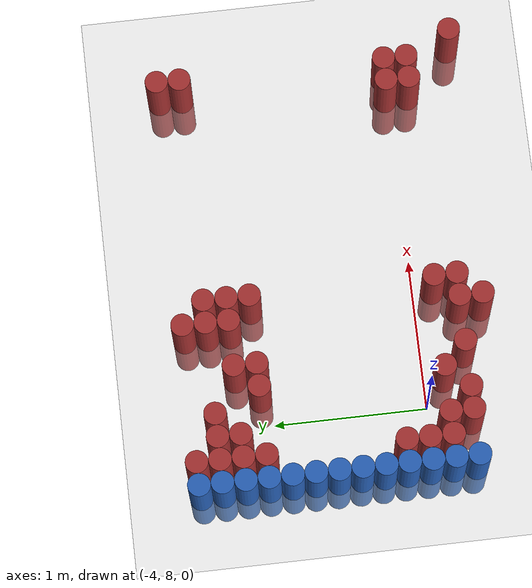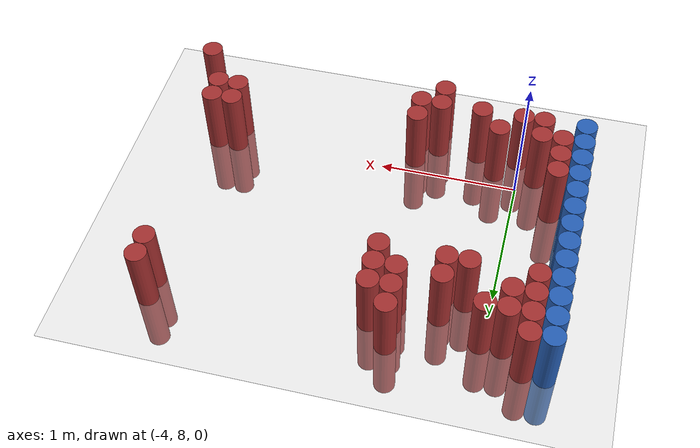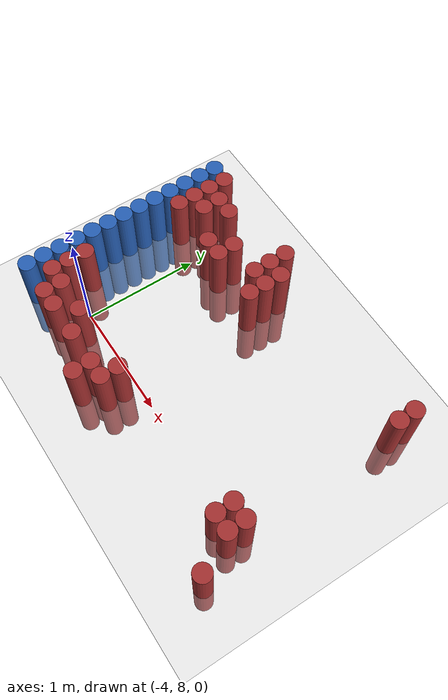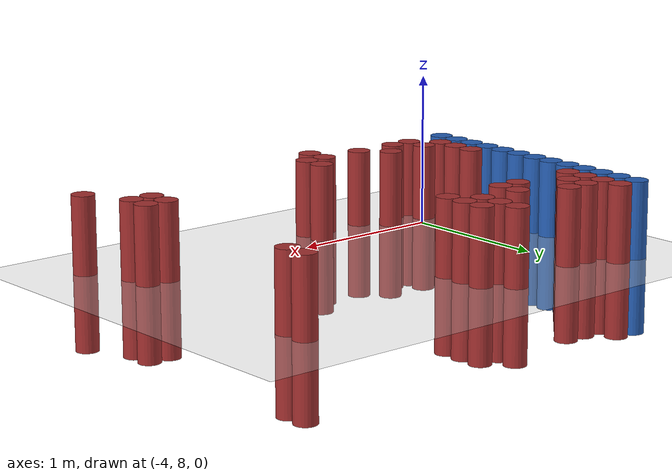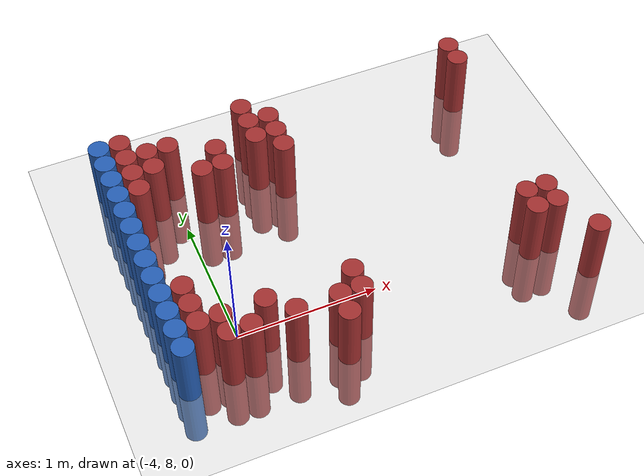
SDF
<sdf version="1.6">
 <world name="default">
  <model name="ground_plane">
   <static>1</static>
   <link name="link">
    <collision name="collision">
     <geometry><plane><normal>0 0 1</normal><size>100 100</size></plane></geometry>
     <surface><friction><ode><mu>100</mu><mu2>50</mu2></ode></friction></surface>
    </collision>
    <visual name="visual">
     <cast_shadows>0</cast_shadows>
     <geometry><plane><normal>0 0 1</normal><size>100 100</size></plane></geometry>
     <material>
      <script><uri>file://media/materials/scripts/gazebo.material</uri><name>Gazebo/Grey</name></script>
     </material>
    </visual>
   </link>
  </model>
  <model name="unit_cylinder_113">
   <static>1</static>
   <pose>-4.425000 7.725000 0.000000 0.000000 0.000000 0.000000</pose>
   <link name="link">
    <inertial>
     <mass>1</mass>
     <inertia><ixx>0.145833</ixx><ixy>0</ixy><ixz>0</ixz><iyy>0.145833</iyy><iyz>0</iyz><izz>0.125</izz></inertia>
    </inertial>
    <collision name="collision">
     <geometry><cylinder><radius>0.075000</radius><length>1</length></cylinder></geometry>
    </collision>
    <visual name="visual">
     <geometry><cylinder><radius>0.075000</radius><length>1</length></cylinder></geometry>
     <material>
      <ambient>0.152000 0.379000 0.720000 1</ambient>
      <diffuse>0.152000 0.379000 0.720000 1</diffuse>
     </material>
     <material>
      <script><name>Gazebo/Grey</name><uri>file://media/materials/scripts/gazebo.material</uri></script>
     </material>
    </visual>
   </link>
  </model>
  <model name="unit_cylinder_114">
   <static>1</static>
   <pose>-4.425000 7.875000 0.000000 0.000000 0.000000 0.000000</pose>
   <link name="link">
    <inertial>
     <mass>1</mass>
     <inertia><ixx>0.145833</ixx><ixy>0</ixy><ixz>0</ixz><iyy>0.145833</iyy><iyz>0</iyz><izz>0.125</izz></inertia>
    </inertial>
    <collision name="collision">
     <geometry><cylinder><radius>0.075000</radius><length>1</length></cylinder></geometry>
    </collision>
    <visual name="visual">
     <geometry><cylinder><radius>0.075000</radius><length>1</length></cylinder></geometry>
     <material>
      <ambient>0.152000 0.379000 0.720000 1</ambient>
      <diffuse>0.152000 0.379000 0.720000 1</diffuse>
     </material>
     <material>
      <script><name>Gazebo/Grey</name><uri>file://media/materials/scripts/gazebo.material</uri></script>
     </material>
    </visual>
   </link>
  </model>
  <model name="unit_cylinder_115">
   <static>1</static>
   <pose>-4.425000 8.025000 0.000000 0.000000 0.000000 0.000000</pose>
   <link name="link">
    <inertial>
     <mass>1</mass>
     <inertia><ixx>0.145833</ixx><ixy>0</ixy><ixz>0</ixz><iyy>0.145833</iyy><iyz>0</iyz><izz>0.125</izz></inertia>
    </inertial>
    <collision name="collision">
     <geometry><cylinder><radius>0.075000</radius><length>1</length></cylinder></geometry>
    </collision>
    <visual name="visual">
     <geometry><cylinder><radius>0.075000</radius><length>1</length></cylinder></geometry>
     <material>
      <ambient>0.152000 0.379000 0.720000 1</ambient>
      <diffuse>0.152000 0.379000 0.720000 1</diffuse>
     </material>
     <material>
      <script><name>Gazebo/Grey</name><uri>file://media/materials/scripts/gazebo.material</uri></script>
     </material>
    </visual>
   </link>
  </model>
  <model name="unit_cylinder_116">
   <static>1</static>
   <pose>-4.425000 8.175000 0.000000 0.000000 0.000000 0.000000</pose>
   <link name="link">
    <inertial>
     <mass>1</mass>
     <inertia><ixx>0.145833</ixx><ixy>0</ixy><ixz>0</ixz><iyy>0.145833</iyy><iyz>0</iyz><izz>0.125</izz></inertia>
    </inertial>
    <collision name="collision">
     <geometry><cylinder><radius>0.075000</radius><length>1</length></cylinder></geometry>
    </collision>
    <visual name="visual">
     <geometry><cylinder><radius>0.075000</radius><length>1</length></cylinder></geometry>
     <material>
      <ambient>0.152000 0.379000 0.720000 1</ambient>
      <diffuse>0.152000 0.379000 0.720000 1</diffuse>
     </material>
     <material>
      <script><name>Gazebo/Grey</name><uri>file://media/materials/scripts/gazebo.material</uri></script>
     </material>
    </visual>
   </link>
  </model>
  <model name="unit_cylinder_117">
   <static>1</static>
   <pose>-4.425000 8.325000 0.000000 0.000000 0.000000 0.000000</pose>
   <link name="link">
    <inertial>
     <mass>1</mass>
     <inertia><ixx>0.145833</ixx><ixy>0</ixy><ixz>0</ixz><iyy>0.145833</iyy><iyz>0</iyz><izz>0.125</izz></inertia>
    </inertial>
    <collision name="collision">
     <geometry><cylinder><radius>0.075000</radius><length>1</length></cylinder></geometry>
    </collision>
    <visual name="visual">
     <geometry><cylinder><radius>0.075000</radius><length>1</length></cylinder></geometry>
     <material>
      <ambient>0.152000 0.379000 0.720000 1</ambient>
      <diffuse>0.152000 0.379000 0.720000 1</diffuse>
     </material>
     <material>
      <script><name>Gazebo/Grey</name><uri>file://media/materials/scripts/gazebo.material</uri></script>
     </material>
    </visual>
   </link>
  </model>
  <model name="unit_cylinder_118">
   <static>1</static>
   <pose>-4.425000 8.475000 0.000000 0.000000 0.000000 0.000000</pose>
   <link name="link">
    <inertial>
     <mass>1</mass>
     <inertia><ixx>0.145833</ixx><ixy>0</ixy><ixz>0</ixz><iyy>0.145833</iyy><iyz>0</iyz><izz>0.125</izz></inertia>
    </inertial>
    <collision name="collision">
     <geometry><cylinder><radius>0.075000</radius><length>1</length></cylinder></geometry>
    </collision>
    <visual name="visual">
     <geometry><cylinder><radius>0.075000</radius><length>1</length></cylinder></geometry>
     <material>
      <ambient>0.152000 0.379000 0.720000 1</ambient>
      <diffuse>0.152000 0.379000 0.720000 1</diffuse>
     </material>
     <material>
      <script><name>Gazebo/Grey</name><uri>file://media/materials/scripts/gazebo.material</uri></script>
     </material>
    </visual>
   </link>
  </model>
  <model name="unit_cylinder_119">
   <static>1</static>
   <pose>-4.425000 8.625000 0.000000 0.000000 0.000000 0.000000</pose>
   <link name="link">
    <inertial>
     <mass>1</mass>
     <inertia><ixx>0.145833</ixx><ixy>0</ixy><ixz>0</ixz><iyy>0.145833</iyy><iyz>0</iyz><izz>0.125</izz></inertia>
    </inertial>
    <collision name="collision">
     <geometry><cylinder><radius>0.075000</radius><length>1</length></cylinder></geometry>
    </collision>
    <visual name="visual">
     <geometry><cylinder><radius>0.075000</radius><length>1</length></cylinder></geometry>
     <material>
      <ambient>0.152000 0.379000 0.720000 1</ambient>
      <diffuse>0.152000 0.379000 0.720000 1</diffuse>
     </material>
     <material>
      <script><name>Gazebo/Grey</name><uri>file://media/materials/scripts/gazebo.material</uri></script>
     </material>
    </visual>
   </link>
  </model>
  <model name="unit_cylinder_120">
   <static>1</static>
   <pose>-4.425000 8.775000 0.000000 0.000000 0.000000 0.000000</pose>
   <link name="link">
    <inertial>
     <mass>1</mass>
     <inertia><ixx>0.145833</ixx><ixy>0</ixy><ixz>0</ixz><iyy>0.145833</iyy><iyz>0</iyz><izz>0.125</izz></inertia>
    </inertial>
    <collision name="collision">
     <geometry><cylinder><radius>0.075000</radius><length>1</length></cylinder></geometry>
    </collision>
    <visual name="visual">
     <geometry><cylinder><radius>0.075000</radius><length>1</length></cylinder></geometry>
     <material>
      <ambient>0.152000 0.379000 0.720000 1</ambient>
      <diffuse>0.152000 0.379000 0.720000 1</diffuse>
     </material>
     <material>
      <script><name>Gazebo/Grey</name><uri>file://media/materials/scripts/gazebo.material</uri></script>
     </material>
    </visual>
   </link>
  </model>
  <model name="unit_cylinder_121">
   <static>1</static>
   <pose>-4.425000 8.925000 0.000000 0.000000 0.000000 0.000000</pose>
   <link name="link">
    <inertial>
     <mass>1</mass>
     <inertia><ixx>0.145833</ixx><ixy>0</ixy><ixz>0</ixz><iyy>0.145833</iyy><iyz>0</iyz><izz>0.125</izz></inertia>
    </inertial>
    <collision name="collision">
     <geometry><cylinder><radius>0.075000</radius><length>1</length></cylinder></geometry>
    </collision>
    <visual name="visual">
     <geometry><cylinder><radius>0.075000</radius><length>1</length></cylinder></geometry>
     <material>
      <ambient>0.152000 0.379000 0.720000 1</ambient>
      <diffuse>0.152000 0.379000 0.720000 1</diffuse>
     </material>
     <material>
      <script><name>Gazebo/Grey</name><uri>file://media/materials/scripts/gazebo.material</uri></script>
     </material>
    </visual>
   </link>
  </model>
  <model name="unit_cylinder_122">
   <static>1</static>
   <pose>-4.425000 9.075000 0.000000 0.000000 0.000000 0.000000</pose>
   <link name="link">
    <inertial>
     <mass>1</mass>
     <inertia><ixx>0.145833</ixx><ixy>0</ixy><ixz>0</ixz><iyy>0.145833</iyy><iyz>0</iyz><izz>0.125</izz></inertia>
    </inertial>
    <collision name="collision">
     <geometry><cylinder><radius>0.075000</radius><length>1</length></cylinder></geometry>
    </collision>
    <visual name="visual">
     <geometry><cylinder><radius>0.075000</radius><length>1</length></cylinder></geometry>
     <material>
      <ambient>0.152000 0.379000 0.720000 1</ambient>
      <diffuse>0.152000 0.379000 0.720000 1</diffuse>
     </material>
     <material>
      <script><name>Gazebo/Grey</name><uri>file://media/materials/scripts/gazebo.material</uri></script>
     </material>
    </visual>
   </link>
  </model>
  <model name="unit_cylinder_123">
   <static>1</static>
   <pose>-4.425000 9.225000 0.000000 0.000000 0.000000 0.000000</pose>
   <link name="link">
    <inertial>
     <mass>1</mass>
     <inertia><ixx>0.145833</ixx><ixy>0</ixy><ixz>0</ixz><iyy>0.145833</iyy><iyz>0</iyz><izz>0.125</izz></inertia>
    </inertial>
    <collision name="collision">
     <geometry><cylinder><radius>0.075000</radius><length>1</length></cylinder></geometry>
    </collision>
    <visual name="visual">
     <geometry><cylinder><radius>0.075000</radius><length>1</length></cylinder></geometry>
     <material>
      <ambient>0.152000 0.379000 0.720000 1</ambient>
      <diffuse>0.152000 0.379000 0.720000 1</diffuse>
     </material>
     <material>
      <script><name>Gazebo/Grey</name><uri>file://media/materials/scripts/gazebo.material</uri></script>
     </material>
    </visual>
   </link>
  </model>
  <model name="unit_cylinder_124">
   <static>1</static>
   <pose>-4.425000 9.375000 0.000000 0.000000 0.000000 0.000000</pose>
   <link name="link">
    <inertial>
     <mass>1</mass>
     <inertia><ixx>0.145833</ixx><ixy>0</ixy><ixz>0</ixz><iyy>0.145833</iyy><iyz>0</iyz><izz>0.125</izz></inertia>
    </inertial>
    <collision name="collision">
     <geometry><cylinder><radius>0.075000</radius><length>1</length></cylinder></geometry>
    </collision>
    <visual name="visual">
     <geometry><cylinder><radius>0.075000</radius><length>1</length></cylinder></geometry>
     <material>
      <ambient>0.152000 0.379000 0.720000 1</ambient>
      <diffuse>0.152000 0.379000 0.720000 1</diffuse>
     </material>
     <material>
      <script><name>Gazebo/Grey</name><uri>file://media/materials/scripts/gazebo.material</uri></script>
     </material>
    </visual>
   </link>
  </model>
  <model name="unit_cylinder_125">
   <static>1</static>
   <pose>-4.425000 9.525000 0.000000 0.000000 0.000000 0.000000</pose>
   <link name="link">
    <inertial>
     <mass>1</mass>
     <inertia><ixx>0.145833</ixx><ixy>0</ixy><ixz>0</ixz><iyy>0.145833</iyy><iyz>0</iyz><izz>0.125</izz></inertia>
    </inertial>
    <collision name="collision">
     <geometry><cylinder><radius>0.075000</radius><length>1</length></cylinder></geometry>
    </collision>
    <visual name="visual">
     <geometry><cylinder><radius>0.075000</radius><length>1</length></cylinder></geometry>
     <material>
      <ambient>0.152000 0.379000 0.720000 1</ambient>
      <diffuse>0.152000 0.379000 0.720000 1</diffuse>
     </material>
     <material>
      <script><name>Gazebo/Grey</name><uri>file://media/materials/scripts/gazebo.material</uri></script>
     </material>
    </visual>
   </link>
  </model>
  <model name="unit_cylinder_137">
   <static>1</static>
   <pose>-4.275000 7.875000 0.000000 0.000000 0.000000 0.000000</pose>
   <link name="link">
    <inertial>
     <mass>1</mass>
     <inertia><ixx>0.145833</ixx><ixy>0</ixy><ixz>0</ixz><iyy>0.145833</iyy><iyz>0</iyz><izz>0.125</izz></inertia>
    </inertial>
    <collision name="collision">
     <geometry><cylinder><radius>0.075000</radius><length>1</length></cylinder></geometry>
    </collision>
    <visual name="visual">
     <geometry><cylinder><radius>0.075000</radius><length>1</length></cylinder></geometry>
     <material>
      <ambient>0.648000 0.192000 0.192000 1</ambient>
      <diffuse>0.648000 0.192000 0.192000 1</diffuse>
     </material>
     <material>
      <script><name>Gazebo/Grey</name><uri>file://media/materials/scripts/gazebo.material</uri></script>
     </material>
    </visual>
   </link>
  </model>
  <model name="unit_cylinder_138">
   <static>1</static>
   <pose>-4.275000 8.025000 0.000000 0.000000 0.000000 0.000000</pose>
   <link name="link">
    <inertial>
     <mass>1</mass>
     <inertia><ixx>0.145833</ixx><ixy>0</ixy><ixz>0</ixz><iyy>0.145833</iyy><iyz>0</iyz><izz>0.125</izz></inertia>
    </inertial>
    <collision name="collision">
     <geometry><cylinder><radius>0.075000</radius><length>1</length></cylinder></geometry>
    </collision>
    <visual name="visual">
     <geometry><cylinder><radius>0.075000</radius><length>1</length></cylinder></geometry>
     <material>
      <ambient>0.648000 0.192000 0.192000 1</ambient>
      <diffuse>0.648000 0.192000 0.192000 1</diffuse>
     </material>
     <material>
      <script><name>Gazebo/Grey</name><uri>file://media/materials/scripts/gazebo.material</uri></script>
     </material>
    </visual>
   </link>
  </model>
  <model name="unit_cylinder_139">
   <static>1</static>
   <pose>-4.275000 8.175000 0.000000 0.000000 0.000000 0.000000</pose>
   <link name="link">
    <inertial>
     <mass>1</mass>
     <inertia><ixx>0.145833</ixx><ixy>0</ixy><ixz>0</ixz><iyy>0.145833</iyy><iyz>0</iyz><izz>0.125</izz></inertia>
    </inertial>
    <collision name="collision">
     <geometry><cylinder><radius>0.075000</radius><length>1</length></cylinder></geometry>
    </collision>
    <visual name="visual">
     <geometry><cylinder><radius>0.075000</radius><length>1</length></cylinder></geometry>
     <material>
      <ambient>0.648000 0.192000 0.192000 1</ambient>
      <diffuse>0.648000 0.192000 0.192000 1</diffuse>
     </material>
     <material>
      <script><name>Gazebo/Grey</name><uri>file://media/materials/scripts/gazebo.material</uri></script>
     </material>
    </visual>
   </link>
  </model>
  <model name="unit_cylinder_140">
   <static>1</static>
   <pose>-4.275000 9.075000 0.000000 0.000000 0.000000 0.000000</pose>
   <link name="link">
    <inertial>
     <mass>1</mass>
     <inertia><ixx>0.145833</ixx><ixy>0</ixy><ixz>0</ixz><iyy>0.145833</iyy><iyz>0</iyz><izz>0.125</izz></inertia>
    </inertial>
    <collision name="collision">
     <geometry><cylinder><radius>0.075000</radius><length>1</length></cylinder></geometry>
    </collision>
    <visual name="visual">
     <geometry><cylinder><radius>0.075000</radius><length>1</length></cylinder></geometry>
     <material>
      <ambient>0.648000 0.192000 0.192000 1</ambient>
      <diffuse>0.648000 0.192000 0.192000 1</diffuse>
     </material>
     <material>
      <script><name>Gazebo/Grey</name><uri>file://media/materials/scripts/gazebo.material</uri></script>
     </material>
    </visual>
   </link>
  </model>
  <model name="unit_cylinder_141">
   <static>1</static>
   <pose>-4.275000 9.225000 0.000000 0.000000 0.000000 0.000000</pose>
   <link name="link">
    <inertial>
     <mass>1</mass>
     <inertia><ixx>0.145833</ixx><ixy>0</ixy><ixz>0</ixz><iyy>0.145833</iyy><iyz>0</iyz><izz>0.125</izz></inertia>
    </inertial>
    <collision name="collision">
     <geometry><cylinder><radius>0.075000</radius><length>1</length></cylinder></geometry>
    </collision>
    <visual name="visual">
     <geometry><cylinder><radius>0.075000</radius><length>1</length></cylinder></geometry>
     <material>
      <ambient>0.648000 0.192000 0.192000 1</ambient>
      <diffuse>0.648000 0.192000 0.192000 1</diffuse>
     </material>
     <material>
      <script><name>Gazebo/Grey</name><uri>file://media/materials/scripts/gazebo.material</uri></script>
     </material>
    </visual>
   </link>
  </model>
  <model name="unit_cylinder_142">
   <static>1</static>
   <pose>-4.275000 9.375000 0.000000 0.000000 0.000000 0.000000</pose>
   <link name="link">
    <inertial>
     <mass>1</mass>
     <inertia><ixx>0.145833</ixx><ixy>0</ixy><ixz>0</ixz><iyy>0.145833</iyy><iyz>0</iyz><izz>0.125</izz></inertia>
    </inertial>
    <collision name="collision">
     <geometry><cylinder><radius>0.075000</radius><length>1</length></cylinder></geometry>
    </collision>
    <visual name="visual">
     <geometry><cylinder><radius>0.075000</radius><length>1</length></cylinder></geometry>
     <material>
      <ambient>0.648000 0.192000 0.192000 1</ambient>
      <diffuse>0.648000 0.192000 0.192000 1</diffuse>
     </material>
     <material>
      <script><name>Gazebo/Grey</name><uri>file://media/materials/scripts/gazebo.material</uri></script>
     </material>
    </visual>
   </link>
  </model>
  <model name="unit_cylinder_143">
   <static>1</static>
   <pose>-4.275000 9.525000 0.000000 0.000000 0.000000 0.000000</pose>
   <link name="link">
    <inertial>
     <mass>1</mass>
     <inertia><ixx>0.145833</ixx><ixy>0</ixy><ixz>0</ixz><iyy>0.145833</iyy><iyz>0</iyz><izz>0.125</izz></inertia>
    </inertial>
    <collision name="collision">
     <geometry><cylinder><radius>0.075000</radius><length>1</length></cylinder></geometry>
    </collision>
    <visual name="visual">
     <geometry><cylinder><radius>0.075000</radius><length>1</length></cylinder></geometry>
     <material>
      <ambient>0.648000 0.192000 0.192000 1</ambient>
      <diffuse>0.648000 0.192000 0.192000 1</diffuse>
     </material>
     <material>
      <script><name>Gazebo/Grey</name><uri>file://media/materials/scripts/gazebo.material</uri></script>
     </material>
    </visual>
   </link>
  </model>
  <model name="unit_cylinder_150">
   <static>1</static>
   <pose>-4.125000 7.725000 0.000000 0.000000 0.000000 0.000000</pose>
   <link name="link">
    <inertial>
     <mass>1</mass>
     <inertia><ixx>0.145833</ixx><ixy>0</ixy><ixz>0</ixz><iyy>0.145833</iyy><iyz>0</iyz><izz>0.125</izz></inertia>
    </inertial>
    <collision name="collision">
     <geometry><cylinder><radius>0.075000</radius><length>1</length></cylinder></geometry>
    </collision>
    <visual name="visual">
     <geometry><cylinder><radius>0.075000</radius><length>1</length></cylinder></geometry>
     <material>
      <ambient>0.648000 0.192000 0.192000 1</ambient>
      <diffuse>0.648000 0.192000 0.192000 1</diffuse>
     </material>
     <material>
      <script><name>Gazebo/Grey</name><uri>file://media/materials/scripts/gazebo.material</uri></script>
     </material>
    </visual>
   </link>
  </model>
  <model name="unit_cylinder_151">
   <static>1</static>
   <pose>-4.125000 7.875000 0.000000 0.000000 0.000000 0.000000</pose>
   <link name="link">
    <inertial>
     <mass>1</mass>
     <inertia><ixx>0.145833</ixx><ixy>0</ixy><ixz>0</ixz><iyy>0.145833</iyy><iyz>0</iyz><izz>0.125</izz></inertia>
    </inertial>
    <collision name="collision">
     <geometry><cylinder><radius>0.075000</radius><length>1</length></cylinder></geometry>
    </collision>
    <visual name="visual">
     <geometry><cylinder><radius>0.075000</radius><length>1</length></cylinder></geometry>
     <material>
      <ambient>0.648000 0.192000 0.192000 1</ambient>
      <diffuse>0.648000 0.192000 0.192000 1</diffuse>
     </material>
     <material>
      <script><name>Gazebo/Grey</name><uri>file://media/materials/scripts/gazebo.material</uri></script>
     </material>
    </visual>
   </link>
  </model>
  <model name="unit_cylinder_152">
   <static>1</static>
   <pose>-4.125000 9.225000 0.000000 0.000000 0.000000 0.000000</pose>
   <link name="link">
    <inertial>
     <mass>1</mass>
     <inertia><ixx>0.145833</ixx><ixy>0</ixy><ixz>0</ixz><iyy>0.145833</iyy><iyz>0</iyz><izz>0.125</izz></inertia>
    </inertial>
    <collision name="collision">
     <geometry><cylinder><radius>0.075000</radius><length>1</length></cylinder></geometry>
    </collision>
    <visual name="visual">
     <geometry><cylinder><radius>0.075000</radius><length>1</length></cylinder></geometry>
     <material>
      <ambient>0.648000 0.192000 0.192000 1</ambient>
      <diffuse>0.648000 0.192000 0.192000 1</diffuse>
     </material>
     <material>
      <script><name>Gazebo/Grey</name><uri>file://media/materials/scripts/gazebo.material</uri></script>
     </material>
    </visual>
   </link>
  </model>
  <model name="unit_cylinder_153">
   <static>1</static>
   <pose>-4.125000 9.375000 0.000000 0.000000 0.000000 0.000000</pose>
   <link name="link">
    <inertial>
     <mass>1</mass>
     <inertia><ixx>0.145833</ixx><ixy>0</ixy><ixz>0</ixz><iyy>0.145833</iyy><iyz>0</iyz><izz>0.125</izz></inertia>
    </inertial>
    <collision name="collision">
     <geometry><cylinder><radius>0.075000</radius><length>1</length></cylinder></geometry>
    </collision>
    <visual name="visual">
     <geometry><cylinder><radius>0.075000</radius><length>1</length></cylinder></geometry>
     <material>
      <ambient>0.648000 0.192000 0.192000 1</ambient>
      <diffuse>0.648000 0.192000 0.192000 1</diffuse>
     </material>
     <material>
      <script><name>Gazebo/Grey</name><uri>file://media/materials/scripts/gazebo.material</uri></script>
     </material>
    </visual>
   </link>
  </model>
  <model name="unit_cylinder_157">
   <static>1</static>
   <pose>-3.975000 7.725000 0.000000 0.000000 0.000000 0.000000</pose>
   <link name="link">
    <inertial>
     <mass>1</mass>
     <inertia><ixx>0.145833</ixx><ixy>0</ixy><ixz>0</ixz><iyy>0.145833</iyy><iyz>0</iyz><izz>0.125</izz></inertia>
    </inertial>
    <collision name="collision">
     <geometry><cylinder><radius>0.075000</radius><length>1</length></cylinder></geometry>
    </collision>
    <visual name="visual">
     <geometry><cylinder><radius>0.075000</radius><length>1</length></cylinder></geometry>
     <material>
      <ambient>0.648000 0.192000 0.192000 1</ambient>
      <diffuse>0.648000 0.192000 0.192000 1</diffuse>
     </material>
     <material>
      <script><name>Gazebo/Grey</name><uri>file://media/materials/scripts/gazebo.material</uri></script>
     </material>
    </visual>
   </link>
  </model>
  <model name="unit_cylinder_158">
   <static>1</static>
   <pose>-3.975000 9.375000 0.000000 0.000000 0.000000 0.000000</pose>
   <link name="link">
    <inertial>
     <mass>1</mass>
     <inertia><ixx>0.145833</ixx><ixy>0</ixy><ixz>0</ixz><iyy>0.145833</iyy><iyz>0</iyz><izz>0.125</izz></inertia>
    </inertial>
    <collision name="collision">
     <geometry><cylinder><radius>0.075000</radius><length>1</length></cylinder></geometry>
    </collision>
    <visual name="visual">
     <geometry><cylinder><radius>0.075000</radius><length>1</length></cylinder></geometry>
     <material>
      <ambient>0.648000 0.192000 0.192000 1</ambient>
      <diffuse>0.648000 0.192000 0.192000 1</diffuse>
     </material>
     <material>
      <script><name>Gazebo/Grey</name><uri>file://media/materials/scripts/gazebo.material</uri></script>
     </material>
    </visual>
   </link>
  </model>
  <model name="unit_cylinder_165">
   <static>1</static>
   <pose>-3.825000 7.875000 0.000000 0.000000 0.000000 0.000000</pose>
   <link name="link">
    <inertial>
     <mass>1</mass>
     <inertia><ixx>0.145833</ixx><ixy>0</ixy><ixz>0</ixz><iyy>0.145833</iyy><iyz>0</iyz><izz>0.125</izz></inertia>
    </inertial>
    <collision name="collision">
     <geometry><cylinder><radius>0.075000</radius><length>1</length></cylinder></geometry>
    </collision>
    <visual name="visual">
     <geometry><cylinder><radius>0.075000</radius><length>1</length></cylinder></geometry>
     <material>
      <ambient>0.648000 0.192000 0.192000 1</ambient>
      <diffuse>0.648000 0.192000 0.192000 1</diffuse>
     </material>
     <material>
      <script><name>Gazebo/Grey</name><uri>file://media/materials/scripts/gazebo.material</uri></script>
     </material>
    </visual>
   </link>
  </model>
  <model name="unit_cylinder_166">
   <static>1</static>
   <pose>-3.825000 9.075000 0.000000 0.000000 0.000000 0.000000</pose>
   <link name="link">
    <inertial>
     <mass>1</mass>
     <inertia><ixx>0.145833</ixx><ixy>0</ixy><ixz>0</ixz><iyy>0.145833</iyy><iyz>0</iyz><izz>0.125</izz></inertia>
    </inertial>
    <collision name="collision">
     <geometry><cylinder><radius>0.075000</radius><length>1</length></cylinder></geometry>
    </collision>
    <visual name="visual">
     <geometry><cylinder><radius>0.075000</radius><length>1</length></cylinder></geometry>
     <material>
      <ambient>0.648000 0.192000 0.192000 1</ambient>
      <diffuse>0.648000 0.192000 0.192000 1</diffuse>
     </material>
     <material>
      <script><name>Gazebo/Grey</name><uri>file://media/materials/scripts/gazebo.material</uri></script>
     </material>
    </visual>
   </link>
  </model>
  <model name="unit_cylinder_173">
   <static>1</static>
   <pose>-3.675000 7.725000 0.000000 0.000000 0.000000 0.000000</pose>
   <link name="link">
    <inertial>
     <mass>1</mass>
     <inertia><ixx>0.145833</ixx><ixy>0</ixy><ixz>0</ixz><iyy>0.145833</iyy><iyz>0</iyz><izz>0.125</izz></inertia>
    </inertial>
    <collision name="collision">
     <geometry><cylinder><radius>0.075000</radius><length>1</length></cylinder></geometry>
    </collision>
    <visual name="visual">
     <geometry><cylinder><radius>0.075000</radius><length>1</length></cylinder></geometry>
     <material>
      <ambient>0.648000 0.192000 0.192000 1</ambient>
      <diffuse>0.648000 0.192000 0.192000 1</diffuse>
     </material>
     <material>
      <script><name>Gazebo/Grey</name><uri>file://media/materials/scripts/gazebo.material</uri></script>
     </material>
    </visual>
   </link>
  </model>
  <model name="unit_cylinder_174">
   <static>1</static>
   <pose>-3.675000 9.075000 0.000000 0.000000 0.000000 0.000000</pose>
   <link name="link">
    <inertial>
     <mass>1</mass>
     <inertia><ixx>0.145833</ixx><ixy>0</ixy><ixz>0</ixz><iyy>0.145833</iyy><iyz>0</iyz><izz>0.125</izz></inertia>
    </inertial>
    <collision name="collision">
     <geometry><cylinder><radius>0.075000</radius><length>1</length></cylinder></geometry>
    </collision>
    <visual name="visual">
     <geometry><cylinder><radius>0.075000</radius><length>1</length></cylinder></geometry>
     <material>
      <ambient>0.648000 0.192000 0.192000 1</ambient>
      <diffuse>0.648000 0.192000 0.192000 1</diffuse>
     </material>
     <material>
      <script><name>Gazebo/Grey</name><uri>file://media/materials/scripts/gazebo.material</uri></script>
     </material>
    </visual>
   </link>
  </model>
  <model name="unit_cylinder_175">
   <static>1</static>
   <pose>-3.675000 9.225000 0.000000 0.000000 0.000000 0.000000</pose>
   <link name="link">
    <inertial>
     <mass>1</mass>
     <inertia><ixx>0.145833</ixx><ixy>0</ixy><ixz>0</ixz><iyy>0.145833</iyy><iyz>0</iyz><izz>0.125</izz></inertia>
    </inertial>
    <collision name="collision">
     <geometry><cylinder><radius>0.075000</radius><length>1</length></cylinder></geometry>
    </collision>
    <visual name="visual">
     <geometry><cylinder><radius>0.075000</radius><length>1</length></cylinder></geometry>
     <material>
      <ambient>0.648000 0.192000 0.192000 1</ambient>
      <diffuse>0.648000 0.192000 0.192000 1</diffuse>
     </material>
     <material>
      <script><name>Gazebo/Grey</name><uri>file://media/materials/scripts/gazebo.material</uri></script>
     </material>
    </visual>
   </link>
  </model>
  <model name="unit_cylinder_181">
   <static>1</static>
   <pose>-3.375000 7.575000 0.000000 0.000000 0.000000 0.000000</pose>
   <link name="link">
    <inertial>
     <mass>1</mass>
     <inertia><ixx>0.145833</ixx><ixy>0</ixy><ixz>0</ixz><iyy>0.145833</iyy><iyz>0</iyz><izz>0.125</izz></inertia>
    </inertial>
    <collision name="collision">
     <geometry><cylinder><radius>0.075000</radius><length>1</length></cylinder></geometry>
    </collision>
    <visual name="visual">
     <geometry><cylinder><radius>0.075000</radius><length>1</length></cylinder></geometry>
     <material>
      <ambient>0.648000 0.192000 0.192000 1</ambient>
      <diffuse>0.648000 0.192000 0.192000 1</diffuse>
     </material>
     <material>
      <script><name>Gazebo/Grey</name><uri>file://media/materials/scripts/gazebo.material</uri></script>
     </material>
    </visual>
   </link>
  </model>
  <model name="unit_cylinder_182">
   <static>1</static>
   <pose>-3.375000 7.725000 0.000000 0.000000 0.000000 0.000000</pose>
   <link name="link">
    <inertial>
     <mass>1</mass>
     <inertia><ixx>0.145833</ixx><ixy>0</ixy><ixz>0</ixz><iyy>0.145833</iyy><iyz>0</iyz><izz>0.125</izz></inertia>
    </inertial>
    <collision name="collision">
     <geometry><cylinder><radius>0.075000</radius><length>1</length></cylinder></geometry>
    </collision>
    <visual name="visual">
     <geometry><cylinder><radius>0.075000</radius><length>1</length></cylinder></geometry>
     <material>
      <ambient>0.648000 0.192000 0.192000 1</ambient>
      <diffuse>0.648000 0.192000 0.192000 1</diffuse>
     </material>
     <material>
      <script><name>Gazebo/Grey</name><uri>file://media/materials/scripts/gazebo.material</uri></script>
     </material>
    </visual>
   </link>
  </model>
  <model name="unit_cylinder_183">
   <static>1</static>
   <pose>-3.375000 9.225000 0.000000 0.000000 0.000000 0.000000</pose>
   <link name="link">
    <inertial>
     <mass>1</mass>
     <inertia><ixx>0.145833</ixx><ixy>0</ixy><ixz>0</ixz><iyy>0.145833</iyy><iyz>0</iyz><izz>0.125</izz></inertia>
    </inertial>
    <collision name="collision">
     <geometry><cylinder><radius>0.075000</radius><length>1</length></cylinder></geometry>
    </collision>
    <visual name="visual">
     <geometry><cylinder><radius>0.075000</radius><length>1</length></cylinder></geometry>
     <material>
      <ambient>0.648000 0.192000 0.192000 1</ambient>
      <diffuse>0.648000 0.192000 0.192000 1</diffuse>
     </material>
     <material>
      <script><name>Gazebo/Grey</name><uri>file://media/materials/scripts/gazebo.material</uri></script>
     </material>
    </visual>
   </link>
  </model>
  <model name="unit_cylinder_184">
   <static>1</static>
   <pose>-3.375000 9.375000 0.000000 0.000000 0.000000 0.000000</pose>
   <link name="link">
    <inertial>
     <mass>1</mass>
     <inertia><ixx>0.145833</ixx><ixy>0</ixy><ixz>0</ixz><iyy>0.145833</iyy><iyz>0</iyz><izz>0.125</izz></inertia>
    </inertial>
    <collision name="collision">
     <geometry><cylinder><radius>0.075000</radius><length>1</length></cylinder></geometry>
    </collision>
    <visual name="visual">
     <geometry><cylinder><radius>0.075000</radius><length>1</length></cylinder></geometry>
     <material>
      <ambient>0.648000 0.192000 0.192000 1</ambient>
      <diffuse>0.648000 0.192000 0.192000 1</diffuse>
     </material>
     <material>
      <script><name>Gazebo/Grey</name><uri>file://media/materials/scripts/gazebo.material</uri></script>
     </material>
    </visual>
   </link>
  </model>
  <model name="unit_cylinder_185">
   <static>1</static>
   <pose>-3.375000 9.525000 0.000000 0.000000 0.000000 0.000000</pose>
   <link name="link">
    <inertial>
     <mass>1</mass>
     <inertia><ixx>0.145833</ixx><ixy>0</ixy><ixz>0</ixz><iyy>0.145833</iyy><iyz>0</iyz><izz>0.125</izz></inertia>
    </inertial>
    <collision name="collision">
     <geometry><cylinder><radius>0.075000</radius><length>1</length></cylinder></geometry>
    </collision>
    <visual name="visual">
     <geometry><cylinder><radius>0.075000</radius><length>1</length></cylinder></geometry>
     <material>
      <ambient>0.648000 0.192000 0.192000 1</ambient>
      <diffuse>0.648000 0.192000 0.192000 1</diffuse>
     </material>
     <material>
      <script><name>Gazebo/Grey</name><uri>file://media/materials/scripts/gazebo.material</uri></script>
     </material>
    </visual>
   </link>
  </model>
  <model name="unit_cylinder_187">
   <static>1</static>
   <pose>-3.225000 7.725000 0.000000 0.000000 0.000000 0.000000</pose>
   <link name="link">
    <inertial>
     <mass>1</mass>
     <inertia><ixx>0.145833</ixx><ixy>0</ixy><ixz>0</ixz><iyy>0.145833</iyy><iyz>0</iyz><izz>0.125</izz></inertia>
    </inertial>
    <collision name="collision">
     <geometry><cylinder><radius>0.075000</radius><length>1</length></cylinder></geometry>
    </collision>
    <visual name="visual">
     <geometry><cylinder><radius>0.075000</radius><length>1</length></cylinder></geometry>
     <material>
      <ambient>0.648000 0.192000 0.192000 1</ambient>
      <diffuse>0.648000 0.192000 0.192000 1</diffuse>
     </material>
     <material>
      <script><name>Gazebo/Grey</name><uri>file://media/materials/scripts/gazebo.material</uri></script>
     </material>
    </visual>
   </link>
  </model>
  <model name="unit_cylinder_188">
   <static>1</static>
   <pose>-3.225000 7.875000 0.000000 0.000000 0.000000 0.000000</pose>
   <link name="link">
    <inertial>
     <mass>1</mass>
     <inertia><ixx>0.145833</ixx><ixy>0</ixy><ixz>0</ixz><iyy>0.145833</iyy><iyz>0</iyz><izz>0.125</izz></inertia>
    </inertial>
    <collision name="collision">
     <geometry><cylinder><radius>0.075000</radius><length>1</length></cylinder></geometry>
    </collision>
    <visual name="visual">
     <geometry><cylinder><radius>0.075000</radius><length>1</length></cylinder></geometry>
     <material>
      <ambient>0.648000 0.192000 0.192000 1</ambient>
      <diffuse>0.648000 0.192000 0.192000 1</diffuse>
     </material>
     <material>
      <script><name>Gazebo/Grey</name><uri>file://media/materials/scripts/gazebo.material</uri></script>
     </material>
    </visual>
   </link>
  </model>
  <model name="unit_cylinder_189">
   <static>1</static>
   <pose>-3.225000 9.075000 0.000000 0.000000 0.000000 0.000000</pose>
   <link name="link">
    <inertial>
     <mass>1</mass>
     <inertia><ixx>0.145833</ixx><ixy>0</ixy><ixz>0</ixz><iyy>0.145833</iyy><iyz>0</iyz><izz>0.125</izz></inertia>
    </inertial>
    <collision name="collision">
     <geometry><cylinder><radius>0.075000</radius><length>1</length></cylinder></geometry>
    </collision>
    <visual name="visual">
     <geometry><cylinder><radius>0.075000</radius><length>1</length></cylinder></geometry>
     <material>
      <ambient>0.648000 0.192000 0.192000 1</ambient>
      <diffuse>0.648000 0.192000 0.192000 1</diffuse>
     </material>
     <material>
      <script><name>Gazebo/Grey</name><uri>file://media/materials/scripts/gazebo.material</uri></script>
     </material>
    </visual>
   </link>
  </model>
  <model name="unit_cylinder_190">
   <static>1</static>
   <pose>-3.225000 9.225000 0.000000 0.000000 0.000000 0.000000</pose>
   <link name="link">
    <inertial>
     <mass>1</mass>
     <inertia><ixx>0.145833</ixx><ixy>0</ixy><ixz>0</ixz><iyy>0.145833</iyy><iyz>0</iyz><izz>0.125</izz></inertia>
    </inertial>
    <collision name="collision">
     <geometry><cylinder><radius>0.075000</radius><length>1</length></cylinder></geometry>
    </collision>
    <visual name="visual">
     <geometry><cylinder><radius>0.075000</radius><length>1</length></cylinder></geometry>
     <material>
      <ambient>0.648000 0.192000 0.192000 1</ambient>
      <diffuse>0.648000 0.192000 0.192000 1</diffuse>
     </material>
     <material>
      <script><name>Gazebo/Grey</name><uri>file://media/materials/scripts/gazebo.material</uri></script>
     </material>
    </visual>
   </link>
  </model>
  <model name="unit_cylinder_191">
   <static>1</static>
   <pose>-3.225000 9.375000 0.000000 0.000000 0.000000 0.000000</pose>
   <link name="link">
    <inertial>
     <mass>1</mass>
     <inertia><ixx>0.145833</ixx><ixy>0</ixy><ixz>0</ixz><iyy>0.145833</iyy><iyz>0</iyz><izz>0.125</izz></inertia>
    </inertial>
    <collision name="collision">
     <geometry><cylinder><radius>0.075000</radius><length>1</length></cylinder></geometry>
    </collision>
    <visual name="visual">
     <geometry><cylinder><radius>0.075000</radius><length>1</length></cylinder></geometry>
     <material>
      <ambient>0.648000 0.192000 0.192000 1</ambient>
      <diffuse>0.648000 0.192000 0.192000 1</diffuse>
     </material>
     <material>
      <script><name>Gazebo/Grey</name><uri>file://media/materials/scripts/gazebo.material</uri></script>
     </material>
    </visual>
   </link>
  </model>
  <model name="unit_cylinder_205">
   <static>1</static>
   <pose>-1.875000 7.875000 0.000000 0.000000 0.000000 0.000000</pose>
   <link name="link">
    <inertial>
     <mass>1</mass>
     <inertia><ixx>0.145833</ixx><ixy>0</ixy><ixz>0</ixz><iyy>0.145833</iyy><iyz>0</iyz><izz>0.125</izz></inertia>
    </inertial>
    <collision name="collision">
     <geometry><cylinder><radius>0.075000</radius><length>1</length></cylinder></geometry>
    </collision>
    <visual name="visual">
     <geometry><cylinder><radius>0.075000</radius><length>1</length></cylinder></geometry>
     <material>
      <ambient>0.648000 0.192000 0.192000 1</ambient>
      <diffuse>0.648000 0.192000 0.192000 1</diffuse>
     </material>
     <material>
      <script><name>Gazebo/Grey</name><uri>file://media/materials/scripts/gazebo.material</uri></script>
     </material>
    </visual>
   </link>
  </model>
  <model name="unit_cylinder_206">
   <static>1</static>
   <pose>-1.875000 8.025000 0.000000 0.000000 0.000000 0.000000</pose>
   <link name="link">
    <inertial>
     <mass>1</mass>
     <inertia><ixx>0.145833</ixx><ixy>0</ixy><ixz>0</ixz><iyy>0.145833</iyy><iyz>0</iyz><izz>0.125</izz></inertia>
    </inertial>
    <collision name="collision">
     <geometry><cylinder><radius>0.075000</radius><length>1</length></cylinder></geometry>
    </collision>
    <visual name="visual">
     <geometry><cylinder><radius>0.075000</radius><length>1</length></cylinder></geometry>
     <material>
      <ambient>0.648000 0.192000 0.192000 1</ambient>
      <diffuse>0.648000 0.192000 0.192000 1</diffuse>
     </material>
     <material>
      <script><name>Gazebo/Grey</name><uri>file://media/materials/scripts/gazebo.material</uri></script>
     </material>
    </visual>
   </link>
  </model>
  <model name="unit_cylinder_210">
   <static>1</static>
   <pose>-1.725000 7.875000 0.000000 0.000000 0.000000 0.000000</pose>
   <link name="link">
    <inertial>
     <mass>1</mass>
     <inertia><ixx>0.145833</ixx><ixy>0</ixy><ixz>0</ixz><iyy>0.145833</iyy><iyz>0</iyz><izz>0.125</izz></inertia>
    </inertial>
    <collision name="collision">
     <geometry><cylinder><radius>0.075000</radius><length>1</length></cylinder></geometry>
    </collision>
    <visual name="visual">
     <geometry><cylinder><radius>0.075000</radius><length>1</length></cylinder></geometry>
     <material>
      <ambient>0.648000 0.192000 0.192000 1</ambient>
      <diffuse>0.648000 0.192000 0.192000 1</diffuse>
     </material>
     <material>
      <script><name>Gazebo/Grey</name><uri>file://media/materials/scripts/gazebo.material</uri></script>
     </material>
    </visual>
   </link>
  </model>
  <model name="unit_cylinder_211">
   <static>1</static>
   <pose>-1.725000 8.025000 0.000000 0.000000 0.000000 0.000000</pose>
   <link name="link">
    <inertial>
     <mass>1</mass>
     <inertia><ixx>0.145833</ixx><ixy>0</ixy><ixz>0</ixz><iyy>0.145833</iyy><iyz>0</iyz><izz>0.125</izz></inertia>
    </inertial>
    <collision name="collision">
     <geometry><cylinder><radius>0.075000</radius><length>1</length></cylinder></geometry>
    </collision>
    <visual name="visual">
     <geometry><cylinder><radius>0.075000</radius><length>1</length></cylinder></geometry>
     <material>
      <ambient>0.648000 0.192000 0.192000 1</ambient>
      <diffuse>0.648000 0.192000 0.192000 1</diffuse>
     </material>
     <material>
      <script><name>Gazebo/Grey</name><uri>file://media/materials/scripts/gazebo.material</uri></script>
     </material>
    </visual>
   </link>
  </model>
  <model name="unit_cylinder_212">
   <static>1</static>
   <pose>-1.725000 9.375000 0.000000 0.000000 0.000000 0.000000</pose>
   <link name="link">
    <inertial>
     <mass>1</mass>
     <inertia><ixx>0.145833</ixx><ixy>0</ixy><ixz>0</ixz><iyy>0.145833</iyy><iyz>0</iyz><izz>0.125</izz></inertia>
    </inertial>
    <collision name="collision">
     <geometry><cylinder><radius>0.075000</radius><length>1</length></cylinder></geometry>
    </collision>
    <visual name="visual">
     <geometry><cylinder><radius>0.075000</radius><length>1</length></cylinder></geometry>
     <material>
      <ambient>0.648000 0.192000 0.192000 1</ambient>
      <diffuse>0.648000 0.192000 0.192000 1</diffuse>
     </material>
     <material>
      <script><name>Gazebo/Grey</name><uri>file://media/materials/scripts/gazebo.material</uri></script>
     </material>
    </visual>
   </link>
  </model>
  <model name="unit_cylinder_213">
   <static>1</static>
   <pose>-1.725000 9.525000 0.000000 0.000000 0.000000 0.000000</pose>
   <link name="link">
    <inertial>
     <mass>1</mass>
     <inertia><ixx>0.145833</ixx><ixy>0</ixy><ixz>0</ixz><iyy>0.145833</iyy><iyz>0</iyz><izz>0.125</izz></inertia>
    </inertial>
    <collision name="collision">
     <geometry><cylinder><radius>0.075000</radius><length>1</length></cylinder></geometry>
    </collision>
    <visual name="visual">
     <geometry><cylinder><radius>0.075000</radius><length>1</length></cylinder></geometry>
     <material>
      <ambient>0.648000 0.192000 0.192000 1</ambient>
      <diffuse>0.648000 0.192000 0.192000 1</diffuse>
     </material>
     <material>
      <script><name>Gazebo/Grey</name><uri>file://media/materials/scripts/gazebo.material</uri></script>
     </material>
    </visual>
   </link>
  </model>
  <model name="unit_cylinder_217">
   <static>1</static>
   <pose>-1.575000 7.575000 0.000000 0.000000 0.000000 0.000000</pose>
   <link name="link">
    <inertial>
     <mass>1</mass>
     <inertia><ixx>0.145833</ixx><ixy>0</ixy><ixz>0</ixz><iyy>0.145833</iyy><iyz>0</iyz><izz>0.125</izz></inertia>
    </inertial>
    <collision name="collision">
     <geometry><cylinder><radius>0.075000</radius><length>1</length></cylinder></geometry>
    </collision>
    <visual name="visual">
     <geometry><cylinder><radius>0.075000</radius><length>1</length></cylinder></geometry>
     <material>
      <ambient>0.648000 0.192000 0.192000 1</ambient>
      <diffuse>0.648000 0.192000 0.192000 1</diffuse>
     </material>
     <material>
      <script><name>Gazebo/Grey</name><uri>file://media/materials/scripts/gazebo.material</uri></script>
     </material>
    </visual>
   </link>
  </model>
 </world>
</sdf>
